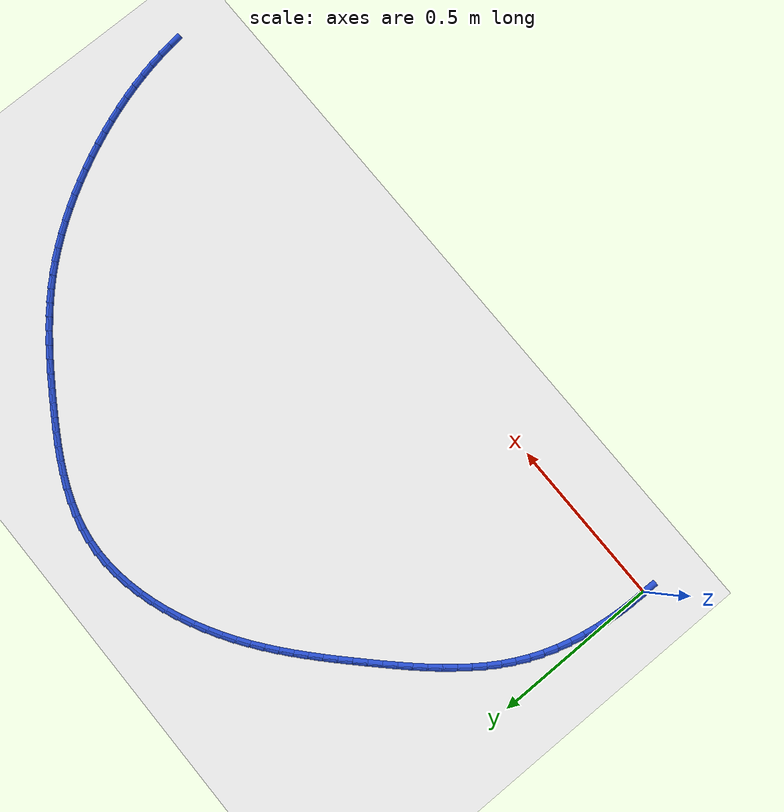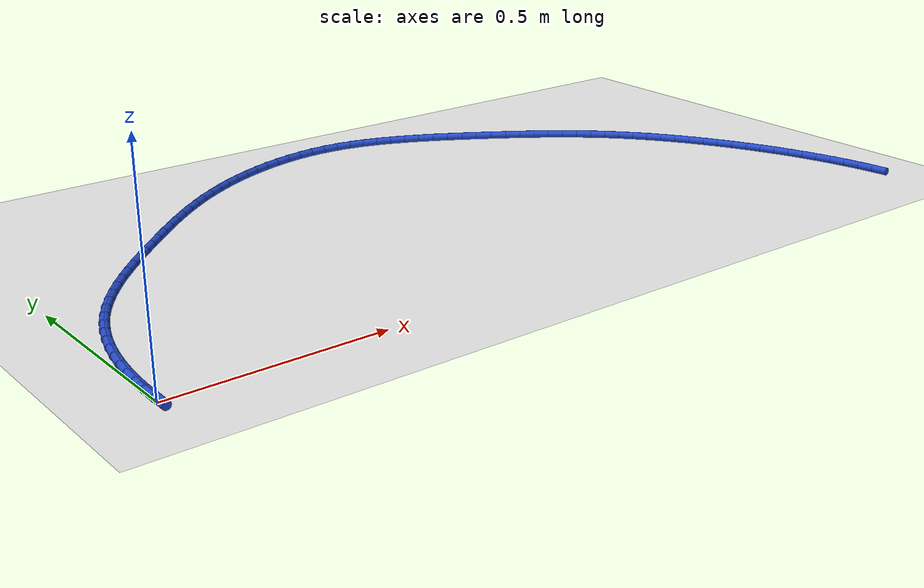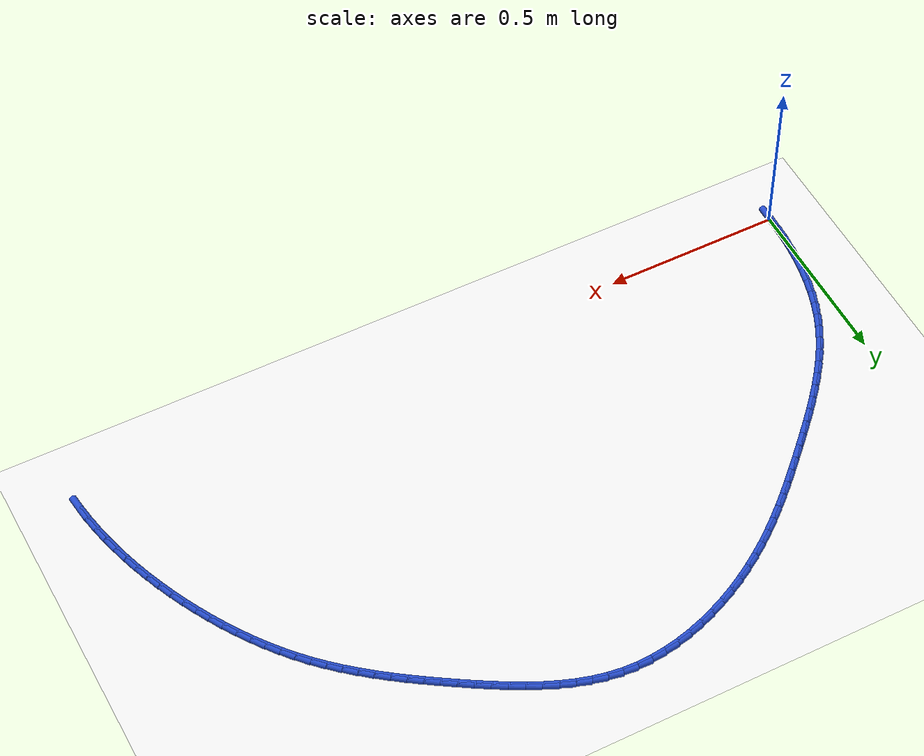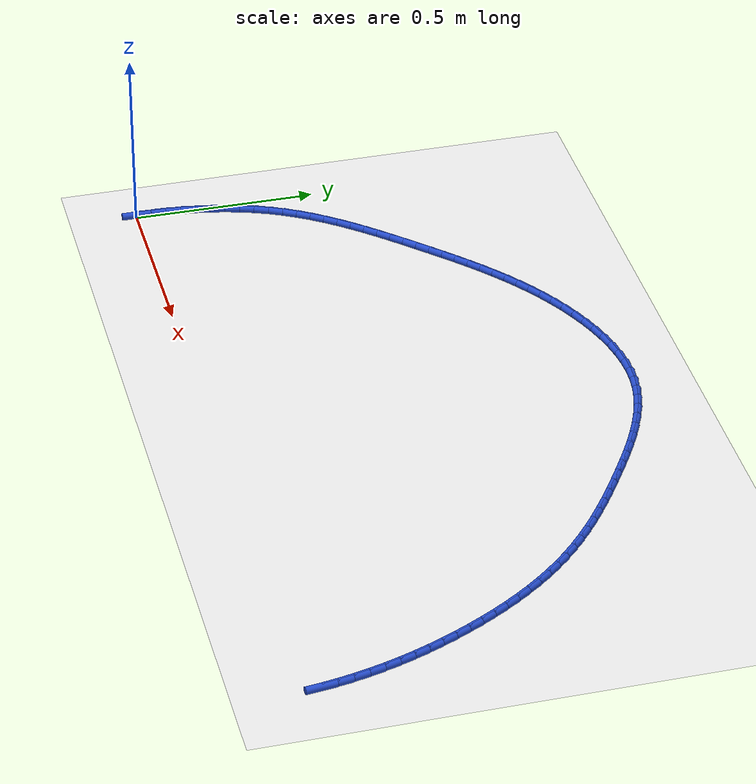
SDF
<sdf version="1.6">
 <world name="default">
  <model name="ground_plane">
   <static>1</static>
   <link name="link">
    <collision name="collision">
     <geometry><plane><normal>0 0 1</normal><size>100 100</size></plane></geometry>
     <surface><friction><ode><mu>100</mu><mu2>50</mu2></ode></friction></surface>
    </collision>
    <visual name="visual">
     <cast_shadows>0</cast_shadows>
     <geometry><plane><normal>0 0 1</normal><size>100 100</size></plane></geometry>
     <material>
      <script><uri>file://media/materials/scripts/gazebo.material</uri><name>Gazebo/WhiteGlow</name></script>
     </material>
    </visual>
   </link>
  </model>
  <model name="line">
   <link name="link_1">
    <pose>0.0003475301557996371 0.04163990276981557 0.01 0 1.57 1.5242031196906132</pose>
    <collision name="collision">
     <geometry><cylinder><radius>0.01</radius><length>0.08</length></cylinder></geometry>
    </collision>
    <visual name="visual">
     <material>
      <script><name>Gazebo/Blue</name><uri>file://media/materials/scripts/gazebo.material</uri></script>
     </material>
     <geometry><cylinder><radius>0.01</radius><length>0.08</length></cylinder></geometry>
    </visual>
   </link>
   <link name="link_2">
    <pose>0.002288513042845296 0.08326781865953595 0.01 0 1.57 1.4839324796471192</pose>
    <collision name="collision">
     <geometry><cylinder><radius>0.01</radius><length>0.08</length></cylinder></geometry>
    </collision>
    <visual name="visual">
     <material>
      <script><name>Gazebo/Blue</name><uri>file://media/materials/scripts/gazebo.material</uri></script>
     </material>
     <geometry><cylinder><radius>0.01</radius><length>0.08</length></cylinder></geometry>
    </visual>
   </link>
   <link name="link_3">
    <pose>0.005900698818099135 0.12474763193301873 0.01 0 1.57 1.4413849862954236</pose>
    <collision name="collision">
     <geometry><cylinder><radius>0.01</radius><length>0.08</length></cylinder></geometry>
    </collision>
    <visual name="visual">
     <material>
      <script><name>Gazebo/Blue</name><uri>file://media/materials/scripts/gazebo.material</uri></script>
     </material>
     <geometry><cylinder><radius>0.01</radius><length>0.08</length></cylinder></geometry>
    </visual>
   </link>
   <link name="link_4">
    <pose>0.01126183763852328 0.16594322685412136 0.01 0 1.57 1.3963094645022793</pose>
    <collision name="collision">
     <geometry><cylinder><radius>0.01</radius><length>0.08</length></cylinder></geometry>
    </collision>
    <visual name="visual">
     <material>
      <script><name>Gazebo/Blue</name><uri>file://media/materials/scripts/gazebo.material</uri></script>
     </material>
     <geometry><cylinder><radius>0.01</radius><length>0.08</length></cylinder></geometry>
    </visual>
   </link>
   <link name="link_5">
    <pose>0.018449679661079885 0.2067184876867016 0.01 0 1.57 1.348462995993757</pose>
    <collision name="collision">
     <geometry><cylinder><radius>0.01</radius><length>0.08</length></cylinder></geometry>
    </collision>
    <visual name="visual">
     <material>
      <script><name>Gazebo/Blue</name><uri>file://media/materials/scripts/gazebo.material</uri></script>
     </material>
     <geometry><cylinder><radius>0.01</radius><length>0.08</length></cylinder></geometry>
    </visual>
   </link>
   <link name="link_6">
    <pose>0.027541975042731107 0.2469372986946169 0.01 0 1.57 1.2976198860110693</pose>
    <collision name="collision">
     <geometry><cylinder><radius>0.01</radius><length>0.08</length></cylinder></geometry>
    </collision>
    <visual name="visual">
     <material>
      <script><name>Gazebo/Blue</name><uri>file://media/materials/scripts/gazebo.material</uri></script>
     </material>
     <geometry><cylinder><radius>0.01</radius><length>0.08</length></cylinder></geometry>
    </visual>
   </link>
   <link name="link_7">
    <pose>0.03861647394043905 0.28646354414172476 0.01 0 1.57 1.2435841757331088</pose>
    <collision name="collision">
     <geometry><cylinder><radius>0.01</radius><length>0.08</length></cylinder></geometry>
    </collision>
    <visual name="visual">
     <material>
      <script><name>Gazebo/Blue</name><uri>file://media/materials/scripts/gazebo.material</uri></script>
     </material>
     <geometry><cylinder><radius>0.01</radius><length>0.08</length></cylinder></geometry>
    </visual>
   </link>
   <link name="link_8">
    <pose>0.051750926511165876 0.3251611082918828 0.01 0 1.57 1.1862059646722516</pose>
    <collision name="collision">
     <geometry><cylinder><radius>0.01</radius><length>0.08</length></cylinder></geometry>
    </collision>
    <visual name="visual">
     <material>
      <script><name>Gazebo/Blue</name><uri>file://media/materials/scripts/gazebo.material</uri></script>
     </material>
     <geometry><cylinder><radius>0.01</radius><length>0.08</length></cylinder></geometry>
    </visual>
   </link>
   <link name="link_9">
    <pose>0.06702308291187374 0.3628938754089487 0.01 0 1.57 1.125550118626905</pose>
    <collision name="collision">
     <geometry><cylinder><radius>0.01</radius><length>0.08</length></cylinder></geometry>
    </collision>
    <visual name="visual">
     <material>
      <script><name>Gazebo/Blue</name><uri>file://media/materials/scripts/gazebo.material</uri></script>
     </material>
     <geometry><cylinder><radius>0.01</radius><length>0.08</length></cylinder></geometry>
    </visual>
   </link>
   <link name="link_10">
    <pose>0.08450578518327874 0.39952946709786913 0.01 0 1.57 1.0657579596768623</pose>
    <collision name="collision">
     <geometry><cylinder><radius>0.01</radius><length>0.08</length></cylinder></geometry>
    </collision>
    <visual name="visual">
     <material>
      <script><name>Gazebo/Blue</name><uri>file://media/materials/scripts/gazebo.material</uri></script>
     </material>
     <geometry><cylinder><radius>0.01</radius><length>0.08</length></cylinder></geometry>
    </visual>
   </link>
   <link name="link_11">
    <pose>0.10413716993710452 0.43503807794872323 0.01 0 1.57 1.0115760830622713</pose>
    <collision name="collision">
     <geometry><cylinder><radius>0.01</radius><length>0.08</length></cylinder></geometry>
    </collision>
    <visual name="visual">
     <material>
      <script><name>Gazebo/Blue</name><uri>file://media/materials/scripts/gazebo.material</uri></script>
     </material>
     <geometry><cylinder><radius>0.01</radius><length>0.08</length></cylinder></geometry>
    </visual>
   </link>
   <link name="link_12">
    <pose>0.12570730107626843 0.469502654204381 0.01 0 1.57 0.9633854211569818</pose>
    <collision name="collision">
     <geometry><cylinder><radius>0.01</radius><length>0.08</length></cylinder></geometry>
    </collision>
    <visual name="visual">
     <material>
      <script><name>Gazebo/Blue</name><uri>file://media/materials/scripts/gazebo.material</uri></script>
     </material>
     <geometry><cylinder><radius>0.01</radius><length>0.08</length></cylinder></geometry>
    </visual>
   </link>
   <link name="link_13">
    <pose>0.14899865342710944 0.503011920896621 0.01 0 1.57 0.9211859444674497</pose>
    <collision name="collision">
     <geometry><cylinder><radius>0.01</radius><length>0.08</length></cylinder></geometry>
    </collision>
    <visual name="visual">
     <material>
      <script><name>Gazebo/Blue</name><uri>file://media/materials/scripts/gazebo.material</uri></script>
     </material>
     <geometry><cylinder><radius>0.01</radius><length>0.08</length></cylinder></geometry>
    </visual>
   </link>
   <link name="link_14">
    <pose>0.1737937018159669 0.5356546030572222 0.01 0 1.57 0.8848788467114191</pose>
    <collision name="collision">
     <geometry><cylinder><radius>0.01</radius><length>0.08</length></cylinder></geometry>
    </collision>
    <visual name="visual">
     <material>
      <script><name>Gazebo/Blue</name><uri>file://media/materials/scripts/gazebo.material</uri></script>
     </material>
     <geometry><cylinder><radius>0.01</radius><length>0.08</length></cylinder></geometry>
    </visual>
   </link>
   <link name="link_15">
    <pose>0.19987492106917987 0.5675194257179637 0.01 0 1.57 0.8543121804191491</pose>
    <collision name="collision">
     <geometry><cylinder><radius>0.01</radius><length>0.08</length></cylinder></geometry>
    </collision>
    <visual name="visual">
     <material>
      <script><name>Gazebo/Blue</name><uri>file://media/materials/scripts/gazebo.material</uri></script>
     </material>
     <geometry><cylinder><radius>0.01</radius><length>0.08</length></cylinder></geometry>
    </visual>
   </link>
   <link name="link_16">
    <pose>0.22702478601308754 0.5986951139106239 0.01 0 1.57 0.8293176231968055</pose>
    <collision name="collision">
     <geometry><cylinder><radius>0.01</radius><length>0.08</length></cylinder></geometry>
    </collision>
    <visual name="visual">
     <material>
      <script><name>Gazebo/Blue</name><uri>file://media/materials/scripts/gazebo.material</uri></script>
     </material>
     <geometry><cylinder><radius>0.01</radius><length>0.08</length></cylinder></geometry>
    </visual>
   </link>
   <link name="link_17">
    <pose>0.255025771474029 0.6292703926669819 0.01 0 1.57 0.8097384657332911</pose>
    <collision name="collision">
     <geometry><cylinder><radius>0.01</radius><length>0.08</length></cylinder></geometry>
    </collision>
    <visual name="visual">
     <material>
      <script><name>Gazebo/Blue</name><uri>file://media/materials/scripts/gazebo.material</uri></script>
     </material>
     <geometry><cylinder><radius>0.01</radius><length>0.08</length></cylinder></geometry>
    </visual>
   </link>
   <link name="link_18">
    <pose>0.28366035227834346 0.6593339870188163 0.01 0 1.57 0.7954501519371617</pose>
    <collision name="collision">
     <geometry><cylinder><radius>0.01</radius><length>0.08</length></cylinder></geometry>
    </collision>
    <visual name="visual">
     <material>
      <script><name>Gazebo/Blue</name><uri>file://media/materials/scripts/gazebo.material</uri></script>
     </material>
     <geometry><cylinder><radius>0.01</radius><length>0.08</length></cylinder></geometry>
    </visual>
   </link>
   <link name="link_19">
    <pose>0.31271100325237017 0.6889746219979064 0.01 0 1.57 0.7863750864269589</pose>
    <collision name="collision">
     <geometry><cylinder><radius>0.01</radius><length>0.08</length></cylinder></geometry>
    </collision>
    <visual name="visual">
     <material>
      <script><name>Gazebo/Blue</name><uri>file://media/materials/scripts/gazebo.material</uri></script>
     </material>
     <geometry><cylinder><radius>0.01</radius><length>0.08</length></cylinder></geometry>
    </visual>
   </link>
   <link name="link_20">
    <pose>0.3419601994428889 0.7182810225175562 0.01 0 1.57 0.7809129598063201</pose>
    <collision name="collision">
     <geometry><cylinder><radius>0.01</radius><length>0.08</length></cylinder></geometry>
    </collision>
    <visual name="visual">
     <material>
      <script><name>Gazebo/Blue</name><uri>file://media/materials/scripts/gazebo.material</uri></script>
     </material>
     <geometry><cylinder><radius>0.01</radius><length>0.08</length></cylinder></geometry>
    </visual>
   </link>
   <link name="link_21">
    <pose>0.37125041706443196 0.7473096664179376 0.01 0 1.57 0.7730311262923875</pose>
    <collision name="collision">
     <geometry><cylinder><radius>0.01</radius><length>0.08</length></cylinder></geometry>
    </collision>
    <visual name="visual">
     <material>
      <script><name>Gazebo/Blue</name><uri>file://media/materials/scripts/gazebo.material</uri></script>
     </material>
     <geometry><cylinder><radius>0.01</radius><length>0.08</length></cylinder></geometry>
    </visual>
   </link>
   <link name="link_22">
    <pose>0.40065311712629853 0.7759939657773348 0.01 0 1.57 0.7612646481107757</pose>
    <collision name="collision">
     <geometry><cylinder><radius>0.01</radius><length>0.08</length></cylinder></geometry>
    </collision>
    <visual name="visual">
     <material>
      <script><name>Gazebo/Blue</name><uri>file://media/materials/scripts/gazebo.material</uri></script>
     </material>
     <geometry><cylinder><radius>0.01</radius><length>0.08</length></cylinder></geometry>
    </visual>
   </link>
   <link name="link_23">
    <pose>0.4302943772468943 0.8042379794821831 0.01 0 1.57 0.7456000215260823</pose>
    <collision name="collision">
     <geometry><cylinder><radius>0.01</radius><length>0.08</length></cylinder></geometry>
    </collision>
    <visual name="visual">
     <material>
      <script><name>Gazebo/Blue</name><uri>file://media/materials/scripts/gazebo.material</uri></script>
     </material>
     <geometry><cylinder><radius>0.01</radius><length>0.08</length></cylinder></geometry>
    </visual>
   </link>
   <link name="link_24">
    <pose>0.4603002750446251 0.8319457664189187 0.01 0 1.57 0.7260470476379888</pose>
    <collision name="collision">
     <geometry><cylinder><radius>0.01</radius><length>0.08</length></cylinder></geometry>
    </collision>
    <visual name="visual">
     <material>
      <script><name>Gazebo/Blue</name><uri>file://media/materials/scripts/gazebo.material</uri></script>
     </material>
     <geometry><cylinder><radius>0.01</radius><length>0.08</length></cylinder></geometry>
    </visual>
   </link>
   <link name="link_25">
    <pose>0.49079688813789646 0.859021385473977 0.01 0 1.57 0.702646051335076</pose>
    <collision name="collision">
     <geometry><cylinder><radius>0.01</radius><length>0.08</length></cylinder></geometry>
    </collision>
    <visual name="visual">
     <material>
      <script><name>Gazebo/Blue</name><uri>file://media/materials/scripts/gazebo.material</uri></script>
     </material>
     <geometry><cylinder><radius>0.01</radius><length>0.08</length></cylinder></geometry>
    </visual>
   </link>
   <link name="link_26">
    <pose>0.5219102941451139 0.8853688955337938 0.01 0 1.57 0.675476258908503</pose>
    <collision name="collision">
     <geometry><cylinder><radius>0.01</radius><length>0.08</length></cylinder></geometry>
    </collision>
    <visual name="visual">
     <material>
      <script><name>Gazebo/Blue</name><uri>file://media/materials/scripts/gazebo.material</uri></script>
     </material>
     <geometry><cylinder><radius>0.01</radius><length>0.08</length></cylinder></geometry>
    </visual>
   </link>
   <link name="link_27">
    <pose>0.5537665706846829 0.9108923554848045 0.01 0 1.57 0.6446647022555019</pose>
    <collision name="collision">
     <geometry><cylinder><radius>0.01</radius><length>0.08</length></cylinder></geometry>
    </collision>
    <visual name="visual">
     <material>
      <script><name>Gazebo/Blue</name><uri>file://media/materials/scripts/gazebo.material</uri></script>
     </material>
     <geometry><cylinder><radius>0.01</radius><length>0.08</length></cylinder></geometry>
    </visual>
   </link>
   <link name="link_28">
    <pose>0.5864917953750094 0.935495824213445 0.01 0 1.57 0.6103947196575686</pose>
    <collision name="collision">
     <geometry><cylinder><radius>0.01</radius><length>0.08</length></cylinder></geometry>
    </collision>
    <visual name="visual">
     <material>
      <script><name>Gazebo/Blue</name><uri>file://media/materials/scripts/gazebo.material</uri></script>
     </material>
     <geometry><cylinder><radius>0.01</radius><length>0.08</length></cylinder></geometry>
    </visual>
   </link>
   <link name="link_29">
    <pose>0.6202120458344988 0.9590833606061511 0.01 0 1.57 0.5729128440158021</pose>
    <collision name="collision">
     <geometry><cylinder><radius>0.01</radius><length>0.08</length></cylinder></geometry>
    </collision>
    <visual name="visual">
     <material>
      <script><name>Gazebo/Blue</name><uri>file://media/materials/scripts/gazebo.material</uri></script>
     </material>
     <geometry><cylinder><radius>0.01</radius><length>0.08</length></cylinder></geometry>
    </visual>
   </link>
   <link name="link_30">
    <pose>0.6550533996815568 0.9815590235493583 0.01 0 1.57 0.5326235998862437</pose>
    <collision name="collision">
     <geometry><cylinder><radius>0.01</radius><length>0.08</length></cylinder></geometry>
    </collision>
    <visual name="visual">
     <material>
      <script><name>Gazebo/Blue</name><uri>file://media/materials/scripts/gazebo.material</uri></script>
     </material>
     <geometry><cylinder><radius>0.01</radius><length>0.08</length></cylinder></geometry>
    </visual>
   </link>
   <link name="link_31">
    <pose>0.6911198886534237 1.002818297357844 0.01 0 1.57 0.49037305305525103</pose>
    <collision name="collision">
     <geometry><cylinder><radius>0.01</radius><length>0.08</length></cylinder></geometry>
    </collision>
    <visual name="visual">
     <material>
      <script><name>Gazebo/Blue</name><uri>file://media/materials/scripts/gazebo.material</uri></script>
     </material>
     <geometry><cylinder><radius>0.01</radius><length>0.08</length></cylinder></geometry>
    </visual>
   </link>
   <link name="link_32">
    <pose>0.728336461378059 1.0226870133830108 0.01 0 1.57 0.4460712215297842</pose>
    <collision name="collision">
     <geometry><cylinder><radius>0.01</radius><length>0.08</length></cylinder></geometry>
    </collision>
    <visual name="visual">
     <material>
      <script><name>Gazebo/Blue</name><uri>file://media/materials/scripts/gazebo.material</uri></script>
     </material>
     <geometry><cylinder><radius>0.01</radius><length>0.08</length></cylinder></geometry>
    </visual>
   </link>
   <link name="link_33">
    <pose>0.7665410147893905 1.0409571449062278 0.01 0 1.57 0.3991680516487144</pose>
    <collision name="collision">
     <geometry><cylinder><radius>0.01</radius><length>0.08</length></cylinder></geometry>
    </collision>
    <visual name="visual">
     <material>
      <script><name>Gazebo/Blue</name><uri>file://media/materials/scripts/gazebo.material</uri></script>
     </material>
     <geometry><cylinder><radius>0.01</radius><length>0.08</length></cylinder></geometry>
    </visual>
   </link>
   <link name="link_34">
    <pose>0.8055708668792918 1.0574204400339158 0.01 0 1.57 0.34909543104826807</pose>
    <collision name="collision">
     <geometry><cylinder><radius>0.01</radius><length>0.08</length></cylinder></geometry>
    </collision>
    <visual name="visual">
     <material>
      <script><name>Gazebo/Blue</name><uri>file://media/materials/scripts/gazebo.material</uri></script>
     </material>
     <geometry><cylinder><radius>0.01</radius><length>0.08</length></cylinder></geometry>
    </visual>
   </link>
   <link name="link_35">
    <pose>0.8452633356396357 1.0718686468724954 0.01 0 1.57 0.29526767775291624</pose>
    <collision name="collision">
     <geometry><cylinder><radius>0.01</radius><length>0.08</length></cylinder></geometry>
    </collision>
    <visual name="visual">
     <material>
      <script><name>Gazebo/Blue</name><uri>file://media/materials/scripts/gazebo.material</uri></script>
     </material>
     <geometry><cylinder><radius>0.01</radius><length>0.08</length></cylinder></geometry>
    </visual>
   </link>
   <link name="link_36">
    <pose>0.8854557390622957 1.0840935135283878 0.01 0 1.57 0.23708782129753006</pose>
    <collision name="collision">
     <geometry><cylinder><radius>0.01</radius><length>0.08</length></cylinder></geometry>
    </collision>
    <visual name="visual">
     <material>
      <script><name>Gazebo/Blue</name><uri>file://media/materials/scripts/gazebo.material</uri></script>
     </material>
     <geometry><cylinder><radius>0.01</radius><length>0.08</length></cylinder></geometry>
    </visual>
   </link>
   <link name="link_37">
    <pose>0.9259853951391442 1.0938867881080137 0.01 0 1.57 0.17396525060231066</pose>
    <collision name="collision">
     <geometry><cylinder><radius>0.01</radius><length>0.08</length></cylinder></geometry>
    </collision>
    <visual name="visual">
     <material>
      <script><name>Gazebo/Blue</name><uri>file://media/materials/scripts/gazebo.material</uri></script>
     </material>
     <geometry><cylinder><radius>0.01</radius><length>0.08</length></cylinder></geometry>
    </visual>
   </link>
   <link name="link_38">
    <pose>0.9666896218620546 1.1010402187177943 0.01 0 1.57 0.10534884038553156</pose>
    <collision name="collision">
     <geometry><cylinder><radius>0.01</radius><length>0.08</length></cylinder></geometry>
    </collision>
    <visual name="visual">
     <material>
      <script><name>Gazebo/Blue</name><uri>file://media/materials/scripts/gazebo.material</uri></script>
     </material>
     <geometry><cylinder><radius>0.01</radius><length>0.08</length></cylinder></geometry>
    </visual>
   </link>
   <link name="link_39">
    <pose>1.0074057372229 1.1053455534641503 0.01 0 1.57 0.03077980094029954</pose>
    <collision name="collision">
     <geometry><cylinder><radius>0.01</radius><length>0.08</length></cylinder></geometry>
    </collision>
    <visual name="visual">
     <material>
      <script><name>Gazebo/Blue</name><uri>file://media/materials/scripts/gazebo.material</uri></script>
     </material>
     <geometry><cylinder><radius>0.01</radius><length>0.08</length></cylinder></geometry>
    </visual>
   </link>
   <link name="link_40">
    <pose>1.0479710592135532 1.1065945404535027 0.01 0 1.57 -0.05003324414728387</pose>
    <collision name="collision">
     <geometry><cylinder><radius>0.01</radius><length>0.08</length></cylinder></geometry>
    </collision>
    <visual name="visual">
     <material>
      <script><name>Gazebo/Blue</name><uri>file://media/materials/scripts/gazebo.material</uri></script>
     </material>
     <geometry><cylinder><radius>0.01</radius><length>0.08</length></cylinder></geometry>
    </visual>
   </link>
   <link name="link_41">
    <pose>1.0882229058258879 1.1045789277922726 0.01 0 1.57 -0.13553702553732105</pose>
    <collision name="collision">
     <geometry><cylinder><radius>0.01</radius><length>0.08</length></cylinder></geometry>
    </collision>
    <visual name="visual">
     <material>
      <script><name>Gazebo/Blue</name><uri>file://media/materials/scripts/gazebo.material</uri></script>
     </material>
     <geometry><cylinder><radius>0.01</radius><length>0.08</length></cylinder></geometry>
    </visual>
   </link>
   <link name="link_42">
    <pose>1.128017947864307 1.0991519537061352 0.01 0 1.57 -0.2161667827833196</pose>
    <collision name="collision">
     <geometry><cylinder><radius>0.01</radius><length>0.08</length></cylinder></geometry>
    </collision>
    <visual name="visual">
     <material>
      <script><name>Gazebo/Blue</name><uri>file://media/materials/scripts/gazebo.material</uri></script>
     </material>
     <geometry><cylinder><radius>0.01</radius><length>0.08</length></cylinder></geometry>
    </visual>
   </link>
   <link name="link_43">
    <pose>1.1673241262843495 1.0905203975327749 0.01 0 1.57 -0.28804515740071235</pose>
    <collision name="collision">
     <geometry><cylinder><radius>0.01</radius><length>0.08</length></cylinder></geometry>
    </collision>
    <visual name="visual">
     <material>
      <script><name>Gazebo/Blue</name><uri>file://media/materials/scripts/gazebo.material</uri></script>
     </material>
     <geometry><cylinder><radius>0.01</radius><length>0.08</length></cylinder></geometry>
    </visual>
   </link>
   <link name="link_44">
    <pose>1.2061490714492047 1.0790171446425618 0.01 0 1.57 -0.35097885810257234</pose>
    <collision name="collision">
     <geometry><cylinder><radius>0.01</radius><length>0.08</length></cylinder></geometry>
    </collision>
    <visual name="visual">
     <material>
      <script><name>Gazebo/Blue</name><uri>file://media/materials/scripts/gazebo.material</uri></script>
     </material>
     <geometry><cylinder><radius>0.01</radius><length>0.08</length></cylinder></geometry>
    </visual>
   </link>
   <link name="link_45">
    <pose>1.2445004627230363 1.0649752360977507 0.01 0 1.57 -0.4051342257002281</pose>
    <collision name="collision">
     <geometry><cylinder><radius>0.01</radius><length>0.08</length></cylinder></geometry>
    </collision>
    <visual name="visual">
     <material>
      <script><name>Gazebo/Blue</name><uri>file://media/materials/scripts/gazebo.material</uri></script>
     </material>
     <geometry><cylinder><radius>0.01</radius><length>0.08</length></cylinder></geometry>
    </visual>
   </link>
   <link name="link_46">
    <pose>1.28238597947001 1.0487277129605947 0.01 0 1.57 -0.45088001485626605</pose>
    <collision name="collision">
     <geometry><cylinder><radius>0.01</radius><length>0.08</length></cylinder></geometry>
    </collision>
    <visual name="visual">
     <material>
      <script><name>Gazebo/Blue</name><uri>file://media/materials/scripts/gazebo.material</uri></script>
     </material>
     <geometry><cylinder><radius>0.01</radius><length>0.08</length></cylinder></geometry>
    </visual>
   </link>
   <link name="link_47">
    <pose>1.31981330105429 1.030607616293349 0.01 0 1.57 -0.48866505048923775</pose>
    <collision name="collision">
     <geometry><cylinder><radius>0.01</radius><length>0.08</length></cylinder></geometry>
    </collision>
    <visual name="visual">
     <material>
      <script><name>Gazebo/Blue</name><uri>file://media/materials/scripts/gazebo.material</uri></script>
     </material>
     <geometry><cylinder><radius>0.01</radius><length>0.08</length></cylinder></geometry>
    </visual>
   </link>
   <link name="link_48">
    <pose>1.3567901068400412 1.0109479871582665 0.01 0 1.57 -0.5189308043068782</pose>
    <collision name="collision">
     <geometry><cylinder><radius>0.01</radius><length>0.08</length></cylinder></geometry>
    </collision>
    <visual name="visual">
     <material>
      <script><name>Gazebo/Blue</name><uri>file://media/materials/scripts/gazebo.material</uri></script>
     </material>
     <geometry><cylinder><radius>0.01</radius><length>0.08</length></cylinder></geometry>
    </visual>
   </link>
   <link name="link_49">
    <pose>1.3933240761914285 0.990081866617602 0.01 0 1.57 -0.542053185050808</pose>
    <collision name="collision">
     <geometry><cylinder><radius>0.01</radius><length>0.08</length></cylinder></geometry>
    </collision>
    <visual name="visual">
     <material>
      <script><name>Gazebo/Blue</name><uri>file://media/materials/scripts/gazebo.material</uri></script>
     </material>
     <geometry><cylinder><radius>0.01</radius><length>0.08</length></cylinder></geometry>
    </visual>
   </link>
   <link name="link_50">
    <pose>1.429422888472616 0.968342295733609 0.01 0 1.57 -0.558304859155313</pose>
    <collision name="collision">
     <geometry><cylinder><radius>0.01</radius><length>0.08</length></cylinder></geometry>
    </collision>
    <visual name="visual">
     <material>
      <script><name>Gazebo/Blue</name><uri>file://media/materials/scripts/gazebo.material</uri></script>
     </material>
     <geometry><cylinder><radius>0.01</radius><length>0.08</length></cylinder></geometry>
    </visual>
   </link>
   <link name="link_51">
    <pose>1.465094223047769 0.9460623155685401 0.01 0 1.57 -0.5695343102827728</pose>
    <collision name="collision">
     <geometry><cylinder><radius>0.01</radius><length>0.08</length></cylinder></geometry>
    </collision>
    <visual name="visual">
     <material>
      <script><name>Gazebo/Blue</name><uri>file://media/materials/scripts/gazebo.material</uri></script>
     </material>
     <geometry><cylinder><radius>0.01</radius><length>0.08</length></cylinder></geometry>
    </visual>
   </link>
   <link name="link_52">
    <pose>1.5003308390457684 0.9234998968884501 0.01 0 1.57 -0.5826063062580944</pose>
    <collision name="collision">
     <geometry><cylinder><radius>0.01</radius><length>0.08</length></cylinder></geometry>
    </collision>
    <visual name="visual">
     <material>
      <script><name>Gazebo/Blue</name><uri>file://media/materials/scripts/gazebo.material</uri></script>
     </material>
     <geometry><cylinder><radius>0.01</radius><length>0.08</length></cylinder></geometry>
    </visual>
   </link>
   <link name="link_53">
    <pose>1.535065866729008 0.900612991285142 0.01 0 1.57 -0.599280844746613</pose>
    <collision name="collision">
     <geometry><cylinder><radius>0.01</radius><length>0.08</length></cylinder></geometry>
    </collision>
    <visual name="visual">
     <material>
      <script><name>Gazebo/Blue</name><uri>file://media/materials/scripts/gazebo.material</uri></script>
     </material>
     <geometry><cylinder><radius>0.01</radius><length>0.08</length></cylinder></geometry>
    </visual>
   </link>
   <link name="link_54">
    <pose>1.5692175421505619 0.8772846110023468 0.01 0 1.57 -0.619613896667951</pose>
    <collision name="collision">
     <geometry><cylinder><radius>0.01</radius><length>0.08</length></cylinder></geometry>
    </collision>
    <visual name="visual">
     <material>
      <script><name>Gazebo/Blue</name><uri>file://media/materials/scripts/gazebo.material</uri></script>
     </material>
     <geometry><cylinder><radius>0.01</radius><length>0.08</length></cylinder></geometry>
    </visual>
   </link>
   <link name="link_55">
    <pose>1.602704101363506 0.8533977682837962 0.01 0 1.57 -0.6436483607772273</pose>
    <collision name="collision">
     <geometry><cylinder><radius>0.01</radius><length>0.08</length></cylinder></geometry>
    </collision>
    <visual name="visual">
     <material>
      <script><name>Gazebo/Blue</name><uri>file://media/materials/scripts/gazebo.material</uri></script>
     </material>
     <geometry><cylinder><radius>0.01</radius><length>0.08</length></cylinder></geometry>
    </visual>
   </link>
   <link name="link_56">
    <pose>1.6354437804209143 0.8288354753732197 0.01 0 1.57 -0.6714054299900848</pose>
    <collision name="collision">
     <geometry><cylinder><radius>0.01</radius><length>0.08</length></cylinder></geometry>
    </collision>
    <visual name="visual">
     <material>
      <script><name>Gazebo/Blue</name><uri>file://media/materials/scripts/gazebo.material</uri></script>
     </material>
     <geometry><cylinder><radius>0.01</radius><length>0.08</length></cylinder></geometry>
    </visual>
   </link>
   <link name="link_57">
    <pose>1.6673548153758617 0.8034807445143493 0.01 0 1.57 -0.7028742616804411</pose>
    <collision name="collision">
     <geometry><cylinder><radius>0.01</radius><length>0.08</length></cylinder></geometry>
    </collision>
    <visual name="visual">
     <material>
      <script><name>Gazebo/Blue</name><uri>file://media/materials/scripts/gazebo.material</uri></script>
     </material>
     <geometry><cylinder><radius>0.01</radius><length>0.08</length></cylinder></geometry>
    </visual>
   </link>
   <link name="link_58">
    <pose>1.6983554422814235 0.7772165879509153 0.01 0 1.57 -0.7380003360959638</pose>
    <collision name="collision">
     <geometry><cylinder><radius>0.01</radius><length>0.08</length></cylinder></geometry>
    </collision>
    <visual name="visual">
     <material>
      <script><name>Gazebo/Blue</name><uri>file://media/materials/scripts/gazebo.material</uri></script>
     </material>
     <geometry><cylinder><radius>0.01</radius><length>0.08</length></cylinder></geometry>
    </visual>
   </link>
   <link name="link_59">
    <pose>1.7283638971906736 0.7499260179266487 0.01 0 1.57 -0.7766732514897949</pose>
    <collision name="collision">
     <geometry><cylinder><radius>0.01</radius><length>0.08</length></cylinder></geometry>
    </collision>
    <visual name="visual">
     <material>
      <script><name>Gazebo/Blue</name><uri>file://media/materials/scripts/gazebo.material</uri></script>
     </material>
     <geometry><cylinder><radius>0.01</radius><length>0.08</length></cylinder></geometry>
    </visual>
   </link>
   <link name="link_60">
    <pose>1.757298416156687 0.7214920466852807 0.01 0 1.57 -0.8185169248583916</pose>
    <collision name="collision">
     <geometry><cylinder><radius>0.01</radius><length>0.08</length></cylinder></geometry>
    </collision>
    <visual name="visual">
     <material>
      <script><name>Gazebo/Blue</name><uri>file://media/materials/scripts/gazebo.material</uri></script>
     </material>
     <geometry><cylinder><radius>0.01</radius><length>0.08</length></cylinder></geometry>
    </visual>
   </link>
   <link name="link_61">
    <pose>1.7850807089136753 0.6918057699014686 0.01 0 1.57 -0.8604155023054468</pose>
    <collision name="collision">
     <geometry><cylinder><radius>0.01</radius><length>0.08</length></cylinder></geometry>
    </collision>
    <visual name="visual">
     <material>
      <script><name>Gazebo/Blue</name><uri>file://media/materials/scripts/gazebo.material</uri></script>
     </material>
     <geometry><cylinder><radius>0.01</radius><length>0.08</length></cylinder></geometry>
    </visual>
   </link>
   <link name="link_62">
    <pose>1.811684120479016 0.6608784411540058 0.01 0 1.57 -0.9001491629084594</pose>
    <collision name="collision">
     <geometry><cylinder><radius>0.01</radius><length>0.08</length></cylinder></geometry>
    </collision>
    <visual name="visual">
     <material>
      <script><name>Gazebo/Blue</name><uri>file://media/materials/scripts/gazebo.material</uri></script>
     </material>
     <geometry><cylinder><radius>0.01</radius><length>0.08</length></cylinder></geometry>
    </visual>
   </link>
   <link name="link_63">
    <pose>1.83712157098673 0.6288134073109929 0.01 0 1.57 -0.9377675606437799</pose>
    <collision name="collision">
     <geometry><cylinder><radius>0.01</radius><length>0.08</length></cylinder></geometry>
    </collision>
    <visual name="visual">
     <material>
      <script><name>Gazebo/Blue</name><uri>file://media/materials/scripts/gazebo.material</uri></script>
     </material>
     <geometry><cylinder><radius>0.01</radius><length>0.08</length></cylinder></geometry>
    </visual>
   </link>
   <link name="link_64">
    <pose>1.861406988590327 0.5957163609526475 0.01 0 1.57 -0.9733901075926603</pose>
    <collision name="collision">
     <geometry><cylinder><radius>0.01</radius><length>0.08</length></cylinder></geometry>
    </collision>
    <visual name="visual">
     <material>
      <script><name>Gazebo/Blue</name><uri>file://media/materials/scripts/gazebo.material</uri></script>
     </material>
     <geometry><cylinder><radius>0.01</radius><length>0.08</length></cylinder></geometry>
    </visual>
   </link>
   <link name="link_65">
    <pose>1.8845543014433177 0.5616929946591859 0.01 0 1.57 -1.0071436078670264</pose>
    <collision name="collision">
     <geometry><cylinder><radius>0.01</radius><length>0.08</length></cylinder></geometry>
    </collision>
    <visual name="visual">
     <material>
      <script><name>Gazebo/Blue</name><uri>file://media/materials/scripts/gazebo.material</uri></script>
     </material>
     <geometry><cylinder><radius>0.01</radius><length>0.08</length></cylinder></geometry>
    </visual>
   </link>
   <link name="link_66">
    <pose>1.906577437699212 0.5268490010108244 0.01 0 1.57 -1.0391585289263157</pose>
    <collision name="collision">
     <geometry><cylinder><radius>0.01</radius><length>0.08</length></cylinder></geometry>
    </collision>
    <visual name="visual">
     <material>
      <script><name>Gazebo/Blue</name><uri>file://media/materials/scripts/gazebo.material</uri></script>
     </material>
     <geometry><cylinder><radius>0.01</radius><length>0.08</length></cylinder></geometry>
    </visual>
   </link>
   <link name="link_67">
    <pose>1.92749032551152 0.4912900725877812 0.01 0 1.57 -1.0695662587360188</pose>
    <collision name="collision">
     <geometry><cylinder><radius>0.01</radius><length>0.08</length></cylinder></geometry>
    </collision>
    <visual name="visual">
     <material>
      <script><name>Gazebo/Blue</name><uri>file://media/materials/scripts/gazebo.material</uri></script>
     </material>
     <geometry><cylinder><radius>0.01</radius><length>0.08</length></cylinder></geometry>
    </visual>
   </link>
   <link name="link_68">
    <pose>1.9473068930337527 0.45512190197027197 0.01 0 1.57 -1.0984972050832895</pose>
    <collision name="collision">
     <geometry><cylinder><radius>0.01</radius><length>0.08</length></cylinder></geometry>
    </collision>
    <visual name="visual">
     <material>
      <script><name>Gazebo/Blue</name><uri>file://media/materials/scripts/gazebo.material</uri></script>
     </material>
     <geometry><cylinder><radius>0.01</radius><length>0.08</length></cylinder></geometry>
    </visual>
   </link>
   <link name="link_69">
    <pose>1.9660410684194205 0.4184501817385144 0.01 0 1.57 -1.12618298835812</pose>
    <collision name="collision">
     <geometry><cylinder><radius>0.01</radius><length>0.08</length></cylinder></geometry>
    </collision>
    <visual name="visual">
     <material>
      <script><name>Gazebo/Blue</name><uri>file://media/materials/scripts/gazebo.material</uri></script>
     </material>
     <geometry><cylinder><radius>0.01</radius><length>0.08</length></cylinder></geometry>
    </visual>
   </link>
   <link name="link_70">
    <pose>1.9837045526662893 0.38137540807684983 0.01 0 1.57 -1.1541099635034</pose>
    <collision name="collision">
     <geometry><cylinder><radius>0.01</radius><length>0.08</length></cylinder></geometry>
    </collision>
    <visual name="visual">
     <material>
      <script><name>Gazebo/Blue</name><uri>file://media/materials/scripts/gazebo.material</uri></script>
     </material>
     <geometry><cylinder><radius>0.01</radius><length>0.08</length></cylinder></geometry>
    </visual>
   </link>
   <link name="link_71">
    <pose>2.0002789681879953 0.3439278978698512 0.01 0 1.57 -1.1832648262542291</pose>
    <collision name="collision">
     <geometry><cylinder><radius>0.01</radius><length>0.08</length></cylinder></geometry>
    </collision>
    <visual name="visual">
     <material>
      <script><name>Gazebo/Blue</name><uri>file://media/materials/scripts/gazebo.material</uri></script>
     </material>
     <geometry><cylinder><radius>0.01</radius><length>0.08</length></cylinder></geometry>
    </visual>
   </link>
   <link name="link_72">
    <pose>2.015724338360991 0.3060875731664022 0.01 0 1.57 -1.213619283208783</pose>
    <collision name="collision">
     <geometry><cylinder><radius>0.01</radius><length>0.08</length></cylinder></geometry>
    </collision>
    <visual name="visual">
     <material>
      <script><name>Gazebo/Blue</name><uri>file://media/materials/scripts/gazebo.material</uri></script>
     </material>
     <geometry><cylinder><radius>0.01</radius><length>0.08</length></cylinder></geometry>
    </visual>
   </link>
   <link name="link_73">
    <pose>2.0300002138346582 0.2678332530494176 0.01 0 1.57 -1.2451096011167635</pose>
    <collision name="collision">
     <geometry><cylinder><radius>0.01</radius><length>0.08</length></cylinder></geometry>
    </collision>
    <visual name="visual">
     <material>
      <script><name>Gazebo/Blue</name><uri>file://media/materials/scripts/gazebo.material</uri></script>
     </material>
     <geometry><cylinder><radius>0.01</radius><length>0.08</length></cylinder></geometry>
    </visual>
   </link>
   <link name="link_74">
    <pose>2.043066145258383 0.2291437566018134 0.01 0 1.57 -1.2776580851208272</pose>
    <collision name="collision">
     <geometry><cylinder><radius>0.01</radius><length>0.08</length></cylinder></geometry>
    </collision>
    <visual name="visual">
     <material>
      <script><name>Gazebo/Blue</name><uri>file://media/materials/scripts/gazebo.material</uri></script>
     </material>
     <geometry><cylinder><radius>0.01</radius><length>0.08</length></cylinder></geometry>
    </visual>
   </link>
   <link name="link_75">
    <pose>2.0548816832815477 0.18999790290650462 0.01 0 1.57 -1.311173019807291</pose>
    <collision name="collision">
     <geometry><cylinder><radius>0.01</radius><length>0.08</length></cylinder></geometry>
    </collision>
    <visual name="visual">
     <material>
      <script><name>Gazebo/Blue</name><uri>file://media/materials/scripts/gazebo.material</uri></script>
     </material>
     <geometry><cylinder><radius>0.01</radius><length>0.08</length></cylinder></geometry>
    </visual>
   </link>
   <link name="link_76">
    <pose>2.065406378553536 0.15037451104640637 0.01 0 1.57 -1.3455490831132813</pose>
    <collision name="collision">
     <geometry><cylinder><radius>0.01</radius><length>0.08</length></cylinder></geometry>
    </collision>
    <visual name="visual">
     <material>
      <script><name>Gazebo/Blue</name><uri>file://media/materials/scripts/gazebo.material</uri></script>
     </material>
     <geometry><cylinder><radius>0.01</radius><length>0.08</length></cylinder></geometry>
    </visual>
   </link>
   <link name="link_77">
    <pose>2.0745997817237316 0.11025240010443466 0.01 0 1.57 -1.3806682780859552</pose>
    <collision name="collision">
     <geometry><cylinder><radius>0.01</radius><length>0.08</length></cylinder></geometry>
    </collision>
    <visual name="visual">
     <material>
      <script><name>Gazebo/Blue</name><uri>file://media/materials/scripts/gazebo.material</uri></script>
     </material>
     <geometry><cylinder><radius>0.01</radius><length>0.08</length></cylinder></geometry>
    </visual>
   </link>
   <link name="link_78">
    <pose>2.0824214434415187 0.0696103891635042 0.01 0 1.57 -1.416401396950805</pose>
    <collision name="collision">
     <geometry><cylinder><radius>0.01</radius><length>0.08</length></cylinder></geometry>
    </collision>
    <visual name="visual">
     <material>
      <script><name>Gazebo/Blue</name><uri>file://media/materials/scripts/gazebo.material</uri></script>
     </material>
     <geometry><cylinder><radius>0.01</radius><length>0.08</length></cylinder></geometry>
    </visual>
   </link>
   <link name="link_79">
    <pose>2.088830914356281 0.028427297306531117 0.01 0 1.57 -1.4526673012065598</pose>
    <collision name="collision">
     <geometry><cylinder><radius>0.01</radius><length>0.08</length></cylinder></geometry>
    </collision>
    <visual name="visual">
     <material>
      <script><name>Gazebo/Blue</name><uri>file://media/materials/scripts/gazebo.material</uri></script>
     </material>
     <geometry><cylinder><radius>0.01</radius><length>0.08</length></cylinder></geometry>
    </visual>
   </link>
   <link name="link_160">
    <pose>-1.1275702593849246e-17 1.249000902703301e-16 0.01 0 1.57 1.5628517349522282</pose>
    <collision name="collision">
     <geometry><cylinder><radius>0.01</radius><length>0.08</length></cylinder></geometry>
    </collision>
    <visual name="visual">
     <material>
      <script><name>Gazebo/Blue</name><uri>file://media/materials/scripts/gazebo.material</uri></script>
     </material>
     <geometry><cylinder><radius>0.01</radius><length>0.08</length></cylinder></geometry>
    </visual>
   </link>
   <link name="link_161">
    <pose>0.0003309224050745928 0.04165291929062376 0.01 0 1.57 1.5628517349522284</pose>
    <collision name="collision">
     <geometry><cylinder><radius>0.01</radius><length>0.08</length></cylinder></geometry>
    </collision>
    <visual name="visual">
     <material>
      <script><name>Gazebo/Blue</name><uri>file://media/materials/scripts/gazebo.material</uri></script>
     </material>
     <geometry><cylinder><radius>0.01</radius><length>0.08</length></cylinder></geometry>
    </visual>
   </link>
  </model>
 </world>
</sdf>
